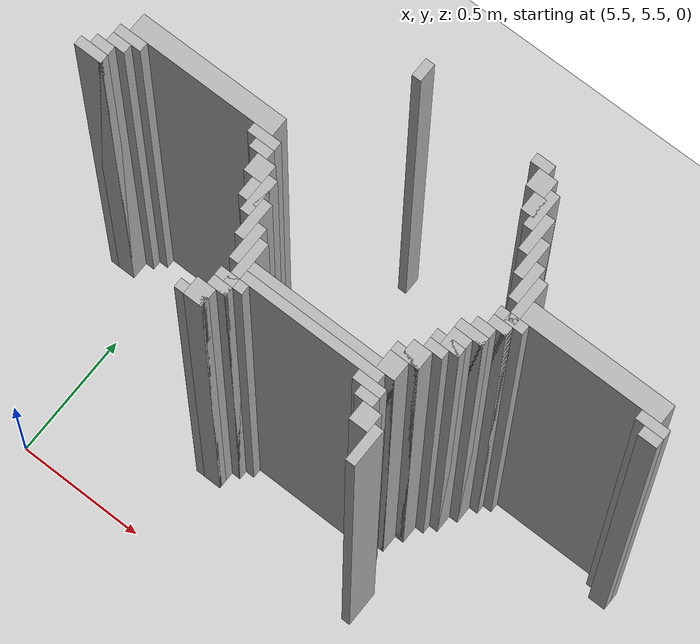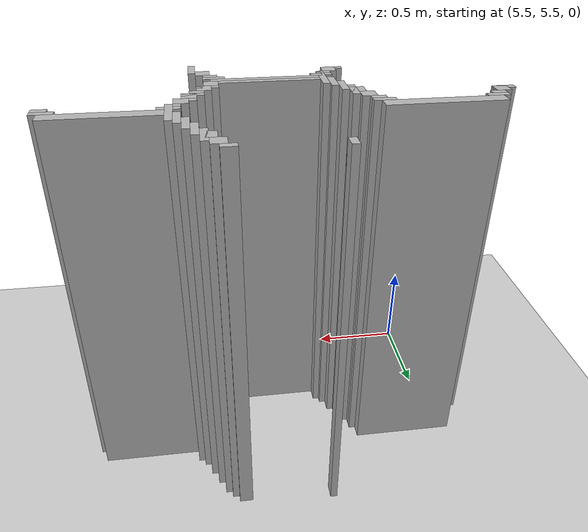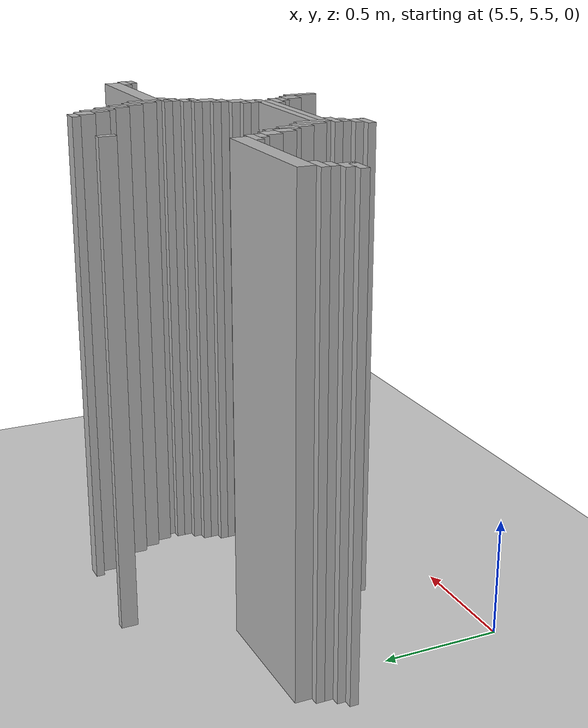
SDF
<sdf version="1.6">
 <world name="slam_world">
  <model name="ground_plane">
   <static>true</static>
   <link name="link">
    <collision name="collision">
     <geometry><plane><normal>0 0 1</normal><size>100 100</size></plane></geometry>
    </collision>
    <visual name="visual">
     <geometry><plane><normal>0 0 1</normal><size>100 100</size></plane></geometry>
     <material>
      <ambient>0.8 0.8 0.8 1</ambient>
      <diffuse>0.8 0.8 0.8 1</diffuse>
      <specular>0.8 0.8 0.8 1</specular>
     </material>
    </visual>
   </link>
  </model>
  <model name="wall_3537">
   <static>true</static>
   <pose>6.177494199535962 6.821345707656612 1.0 0 0 0</pose>
   <link name="link">
    <collision name="collision">
     <geometry><box><size>0.03480278422273782 0.06960556844547564 2.0</size></box></geometry>
    </collision>
    <visual name="visual">
     <geometry><box><size>0.03480278422273782 0.06960556844547564 2.0</size></box></geometry>
     <material><ambient>0.5 0.5 0.5 1</ambient><diffuse>0.7 0.7 0.7 1</diffuse></material>
    </visual>
   </link>
  </model>
  <model name="wall_3550">
   <static>true</static>
   <pose>6.647331786542924 6.803944315545244 1.0 0 0 0</pose>
   <link name="link">
    <collision name="collision">
     <geometry><box><size>0.06960556844547564 0.03480278422273782 2.0</size></box></geometry>
    </collision>
    <visual name="visual">
     <geometry><box><size>0.06960556844547564 0.03480278422273782 2.0</size></box></geometry>
     <material><ambient>0.5 0.5 0.5 1</ambient><diffuse>0.7 0.7 0.7 1</diffuse></material>
    </visual>
   </link>
  </model>
  <model name="wall_3558">
   <static>true</static>
   <pose>6.682134570765661 6.751740139211137 1.0 0 0 0</pose>
   <link name="link">
    <collision name="collision">
     <geometry><box><size>0.06960556844547564 0.06960556844547564 2.0</size></box></geometry>
    </collision>
    <visual name="visual">
     <geometry><box><size>0.06960556844547564 0.06960556844547564 2.0</size></box></geometry>
     <material><ambient>0.5 0.5 0.5 1</ambient><diffuse>0.7 0.7 0.7 1</diffuse></material>
    </visual>
   </link>
  </model>
  <model name="wall_3571">
   <static>true</static>
   <pose>6.734338747099768 6.682134570765661 1.0 0 0 0</pose>
   <link name="link">
    <collision name="collision">
     <geometry><box><size>0.03480278422273782 0.13921113689095127 2.0</size></box></geometry>
    </collision>
    <visual name="visual">
     <geometry><box><size>0.03480278422273782 0.13921113689095127 2.0</size></box></geometry>
     <material><ambient>0.5 0.5 0.5 1</ambient><diffuse>0.7 0.7 0.7 1</diffuse></material>
    </visual>
   </link>
  </model>
  <model name="wall_3584">
   <static>true</static>
   <pose>6.716937354988398 6.682134570765661 1.0 0 0 0</pose>
   <link name="link">
    <collision name="collision">
     <geometry><box><size>0.06960556844547564 0.06960556844547564 2.0</size></box></geometry>
    </collision>
    <visual name="visual">
     <geometry><box><size>0.06960556844547564 0.06960556844547564 2.0</size></box></geometry>
     <material><ambient>0.5 0.5 0.5 1</ambient><diffuse>0.7 0.7 0.7 1</diffuse></material>
    </visual>
   </link>
  </model>
  <model name="wall_3597">
   <static>true</static>
   <pose>6.769141531322505 6.612529002320185 1.0 0 0 0</pose>
   <link name="link">
    <collision name="collision">
     <geometry><box><size>0.03480278422273782 0.13921113689095127 2.0</size></box></geometry>
    </collision>
    <visual name="visual">
     <geometry><box><size>0.03480278422273782 0.13921113689095127 2.0</size></box></geometry>
     <material><ambient>0.5 0.5 0.5 1</ambient><diffuse>0.7 0.7 0.7 1</diffuse></material>
    </visual>
   </link>
  </model>
  <model name="wall_3617">
   <static>true</static>
   <pose>6.803944315545244 6.5429234338747095 1.0 0 0 0</pose>
   <link name="link">
    <collision name="collision">
     <geometry><box><size>0.03480278422273782 0.13921113689095127 2.0</size></box></geometry>
    </collision>
    <visual name="visual">
     <geometry><box><size>0.03480278422273782 0.13921113689095127 2.0</size></box></geometry>
     <material><ambient>0.5 0.5 0.5 1</ambient><diffuse>0.7 0.7 0.7 1</diffuse></material>
    </visual>
   </link>
  </model>
  <model name="wall_3630">
   <static>true</static>
   <pose>6.838747099767981 6.473317865429234 1.0 0 0 0</pose>
   <link name="link">
    <collision name="collision">
     <geometry><box><size>0.03480278422273782 0.13921113689095127 2.0</size></box></geometry>
    </collision>
    <visual name="visual">
     <geometry><box><size>0.03480278422273782 0.13921113689095127 2.0</size></box></geometry>
     <material><ambient>0.5 0.5 0.5 1</ambient><diffuse>0.7 0.7 0.7 1</diffuse></material>
    </visual>
   </link>
  </model>
  <model name="wall_3643">
   <static>true</static>
   <pose>6.8735498839907185 6.403712296983758 1.0 0 0 0</pose>
   <link name="link">
    <collision name="collision">
     <geometry><box><size>0.03480278422273782 0.2088167053364269 2.0</size></box></geometry>
    </collision>
    <visual name="visual">
     <geometry><box><size>0.03480278422273782 0.2088167053364269 2.0</size></box></geometry>
     <material><ambient>0.5 0.5 0.5 1</ambient><diffuse>0.7 0.7 0.7 1</diffuse></material>
    </visual>
   </link>
  </model>
  <model name="wall_3664">
   <static>true</static>
   <pose>5.672853828306264 6.403712296983758 1.0 0 0 0</pose>
   <link name="link">
    <collision name="collision">
     <geometry><box><size>0.5568445475638051 0.06960556844547564 2.0</size></box></geometry>
    </collision>
    <visual name="visual">
     <geometry><box><size>0.5568445475638051 0.06960556844547564 2.0</size></box></geometry>
     <material><ambient>0.5 0.5 0.5 1</ambient><diffuse>0.7 0.7 0.7 1</diffuse></material>
    </visual>
   </link>
  </model>
  <model name="wall_3665">
   <static>true</static>
   <pose>7.151972157772621 6.403712296983758 1.0 0 0 0</pose>
   <link name="link">
    <collision name="collision">
     <geometry><box><size>0.5220417633410672 0.06960556844547564 2.0</size></box></geometry>
    </collision>
    <visual name="visual">
     <geometry><box><size>0.5220417633410672 0.06960556844547564 2.0</size></box></geometry>
     <material><ambient>0.5 0.5 0.5 1</ambient><diffuse>0.7 0.7 0.7 1</diffuse></material>
    </visual>
   </link>
  </model>
  <model name="wall_3682">
   <static>true</static>
   <pose>5.41183294663573 6.351508120649652 1.0 0 0 0</pose>
   <link name="link">
    <collision name="collision">
     <geometry><box><size>0.10440835266821345 0.03480278422273782 2.0</size></box></geometry>
    </collision>
    <visual name="visual">
     <geometry><box><size>0.10440835266821345 0.03480278422273782 2.0</size></box></geometry>
     <material><ambient>0.5 0.5 0.5 1</ambient><diffuse>0.7 0.7 0.7 1</diffuse></material>
    </visual>
   </link>
  </model>
  <model name="wall_3683">
   <static>true</static>
   <pose>5.933874709976798 6.351508120649652 1.0 0 0 0</pose>
   <link name="link">
    <collision name="collision">
     <geometry><box><size>0.10440835266821345 0.03480278422273782 2.0</size></box></geometry>
    </collision>
    <visual name="visual">
     <geometry><box><size>0.10440835266821345 0.03480278422273782 2.0</size></box></geometry>
     <material><ambient>0.5 0.5 0.5 1</ambient><diffuse>0.7 0.7 0.7 1</diffuse></material>
    </visual>
   </link>
  </model>
  <model name="wall_3684">
   <static>true</static>
   <pose>6.8735498839907185 6.351508120649652 1.0 0 0 0</pose>
   <link name="link">
    <collision name="collision">
     <geometry><box><size>0.10440835266821345 0.03480278422273782 2.0</size></box></geometry>
    </collision>
    <visual name="visual">
     <geometry><box><size>0.10440835266821345 0.03480278422273782 2.0</size></box></geometry>
     <material><ambient>0.5 0.5 0.5 1</ambient><diffuse>0.7 0.7 0.7 1</diffuse></material>
    </visual>
   </link>
  </model>
  <model name="wall_3685">
   <static>true</static>
   <pose>7.395591647331786 6.351508120649652 1.0 0 0 0</pose>
   <link name="link">
    <collision name="collision">
     <geometry><box><size>0.10440835266821345 0.03480278422273782 2.0</size></box></geometry>
    </collision>
    <visual name="visual">
     <geometry><box><size>0.10440835266821345 0.03480278422273782 2.0</size></box></geometry>
     <material><ambient>0.5 0.5 0.5 1</ambient><diffuse>0.7 0.7 0.7 1</diffuse></material>
    </visual>
   </link>
  </model>
  <model name="wall_3692">
   <static>true</static>
   <pose>5.3944315545243615 6.316705336426914 1.0 0 0 0</pose>
   <link name="link">
    <collision name="collision">
     <geometry><box><size>0.06960556844547564 0.03480278422273782 2.0</size></box></geometry>
    </collision>
    <visual name="visual">
     <geometry><box><size>0.06960556844547564 0.03480278422273782 2.0</size></box></geometry>
     <material><ambient>0.5 0.5 0.5 1</ambient><diffuse>0.7 0.7 0.7 1</diffuse></material>
    </visual>
   </link>
  </model>
  <model name="wall_3693">
   <static>true</static>
   <pose>5.951276102088166 6.316705336426914 1.0 0 0 0</pose>
   <link name="link">
    <collision name="collision">
     <geometry><box><size>0.06960556844547564 0.03480278422273782 2.0</size></box></geometry>
    </collision>
    <visual name="visual">
     <geometry><box><size>0.06960556844547564 0.03480278422273782 2.0</size></box></geometry>
     <material><ambient>0.5 0.5 0.5 1</ambient><diffuse>0.7 0.7 0.7 1</diffuse></material>
    </visual>
   </link>
  </model>
  <model name="wall_3694">
   <static>true</static>
   <pose>6.85614849187935 6.316705336426914 1.0 0 0 0</pose>
   <link name="link">
    <collision name="collision">
     <geometry><box><size>0.06960556844547564 0.03480278422273782 2.0</size></box></geometry>
    </collision>
    <visual name="visual">
     <geometry><box><size>0.06960556844547564 0.03480278422273782 2.0</size></box></geometry>
     <material><ambient>0.5 0.5 0.5 1</ambient><diffuse>0.7 0.7 0.7 1</diffuse></material>
    </visual>
   </link>
  </model>
  <model name="wall_3695">
   <static>true</static>
   <pose>7.412993039443156 6.316705336426914 1.0 0 0 0</pose>
   <link name="link">
    <collision name="collision">
     <geometry><box><size>0.06960556844547564 0.03480278422273782 2.0</size></box></geometry>
    </collision>
    <visual name="visual">
     <geometry><box><size>0.06960556844547564 0.03480278422273782 2.0</size></box></geometry>
     <material><ambient>0.5 0.5 0.5 1</ambient><diffuse>0.7 0.7 0.7 1</diffuse></material>
    </visual>
   </link>
  </model>
  <model name="wall_3705">
   <static>true</static>
   <pose>5.359628770301624 6.2645011600928076 1.0 0 0 0</pose>
   <link name="link">
    <collision name="collision">
     <geometry><box><size>0.06960556844547564 0.06960556844547564 2.0</size></box></geometry>
    </collision>
    <visual name="visual">
     <geometry><box><size>0.06960556844547564 0.06960556844547564 2.0</size></box></geometry>
     <material><ambient>0.5 0.5 0.5 1</ambient><diffuse>0.7 0.7 0.7 1</diffuse></material>
    </visual>
   </link>
  </model>
  <model name="wall_3706">
   <static>true</static>
   <pose>5.986078886310905 6.2645011600928076 1.0 0 0 0</pose>
   <link name="link">
    <collision name="collision">
     <geometry><box><size>0.06960556844547564 0.06960556844547564 2.0</size></box></geometry>
    </collision>
    <visual name="visual">
     <geometry><box><size>0.06960556844547564 0.06960556844547564 2.0</size></box></geometry>
     <material><ambient>0.5 0.5 0.5 1</ambient><diffuse>0.7 0.7 0.7 1</diffuse></material>
    </visual>
   </link>
  </model>
  <model name="wall_3707">
   <static>true</static>
   <pose>6.821345707656612 6.2645011600928076 1.0 0 0 0</pose>
   <link name="link">
    <collision name="collision">
     <geometry><box><size>0.06960556844547564 0.06960556844547564 2.0</size></box></geometry>
    </collision>
    <visual name="visual">
     <geometry><box><size>0.06960556844547564 0.06960556844547564 2.0</size></box></geometry>
     <material><ambient>0.5 0.5 0.5 1</ambient><diffuse>0.7 0.7 0.7 1</diffuse></material>
    </visual>
   </link>
  </model>
  <model name="wall_3718">
   <static>true</static>
   <pose>5.342227378190255 6.247099767981438 1.0 0 0 0</pose>
   <link name="link">
    <collision name="collision">
     <geometry><box><size>0.10440835266821345 0.03480278422273782 2.0</size></box></geometry>
    </collision>
    <visual name="visual">
     <geometry><box><size>0.10440835266821345 0.03480278422273782 2.0</size></box></geometry>
     <material><ambient>0.5 0.5 0.5 1</ambient><diffuse>0.7 0.7 0.7 1</diffuse></material>
    </visual>
   </link>
  </model>
  <model name="wall_3719">
   <static>true</static>
   <pose>6.038283062645012 6.194895591647332 1.0 0 0 0</pose>
   <link name="link">
    <collision name="collision">
     <geometry><box><size>0.03480278422273782 0.13921113689095127 2.0</size></box></geometry>
    </collision>
    <visual name="visual">
     <geometry><box><size>0.03480278422273782 0.13921113689095127 2.0</size></box></geometry>
     <material><ambient>0.5 0.5 0.5 1</ambient><diffuse>0.7 0.7 0.7 1</diffuse></material>
    </visual>
   </link>
  </model>
  <model name="wall_3720">
   <static>true</static>
   <pose>6.803944315545244 6.247099767981438 1.0 0 0 0</pose>
   <link name="link">
    <collision name="collision">
     <geometry><box><size>0.10440835266821345 0.03480278422273782 2.0</size></box></geometry>
    </collision>
    <visual name="visual">
     <geometry><box><size>0.10440835266821345 0.03480278422273782 2.0</size></box></geometry>
     <material><ambient>0.5 0.5 0.5 1</ambient><diffuse>0.7 0.7 0.7 1</diffuse></material>
    </visual>
   </link>
  </model>
  <model name="wall_3732">
   <static>true</static>
   <pose>6.020881670533642 6.194895591647332 1.0 0 0 0</pose>
   <link name="link">
    <collision name="collision">
     <geometry><box><size>0.06960556844547564 0.06960556844547564 2.0</size></box></geometry>
    </collision>
    <visual name="visual">
     <geometry><box><size>0.06960556844547564 0.06960556844547564 2.0</size></box></geometry>
     <material><ambient>0.5 0.5 0.5 1</ambient><diffuse>0.7 0.7 0.7 1</diffuse></material>
    </visual>
   </link>
  </model>
  <model name="wall_3733">
   <static>true</static>
   <pose>6.786542923433874 6.194895591647332 1.0 0 0 0</pose>
   <link name="link">
    <collision name="collision">
     <geometry><box><size>0.06960556844547564 0.06960556844547564 2.0</size></box></geometry>
    </collision>
    <visual name="visual">
     <geometry><box><size>0.06960556844547564 0.06960556844547564 2.0</size></box></geometry>
     <material><ambient>0.5 0.5 0.5 1</ambient><diffuse>0.7 0.7 0.7 1</diffuse></material>
    </visual>
   </link>
  </model>
  <model name="wall_3745">
   <static>true</static>
   <pose>6.073085846867749 6.125290023201856 1.0 0 0 0</pose>
   <link name="link">
    <collision name="collision">
     <geometry><box><size>0.03480278422273782 0.13921113689095127 2.0</size></box></geometry>
    </collision>
    <visual name="visual">
     <geometry><box><size>0.03480278422273782 0.13921113689095127 2.0</size></box></geometry>
     <material><ambient>0.5 0.5 0.5 1</ambient><diffuse>0.7 0.7 0.7 1</diffuse></material>
    </visual>
   </link>
  </model>
  <model name="wall_3746">
   <static>true</static>
   <pose>6.769141531322505 6.177494199535962 1.0 0 0 0</pose>
   <link name="link">
    <collision name="collision">
     <geometry><box><size>0.10440835266821345 0.03480278422273782 2.0</size></box></geometry>
    </collision>
    <visual name="visual">
     <geometry><box><size>0.10440835266821345 0.03480278422273782 2.0</size></box></geometry>
     <material><ambient>0.5 0.5 0.5 1</ambient><diffuse>0.7 0.7 0.7 1</diffuse></material>
    </visual>
   </link>
  </model>
  <model name="wall_3755">
   <static>true</static>
   <pose>6.751740139211137 6.142691415313225 1.0 0 0 0</pose>
   <link name="link">
    <collision name="collision">
     <geometry><box><size>0.06960556844547564 0.03480278422273782 2.0</size></box></geometry>
    </collision>
    <visual name="visual">
     <geometry><box><size>0.06960556844547564 0.03480278422273782 2.0</size></box></geometry>
     <material><ambient>0.5 0.5 0.5 1</ambient><diffuse>0.7 0.7 0.7 1</diffuse></material>
    </visual>
   </link>
  </model>
  <model name="wall_3762">
   <static>true</static>
   <pose>6.107888631090487 6.05568445475638 1.0 0 0 0</pose>
   <link name="link">
    <collision name="collision">
     <geometry><box><size>0.03480278422273782 0.13921113689095127 2.0</size></box></geometry>
    </collision>
    <visual name="visual">
     <geometry><box><size>0.03480278422273782 0.13921113689095127 2.0</size></box></geometry>
     <material><ambient>0.5 0.5 0.5 1</ambient><diffuse>0.7 0.7 0.7 1</diffuse></material>
    </visual>
   </link>
  </model>
  <model name="wall_3763">
   <static>true</static>
   <pose>6.716937354988398 6.090487238979118 1.0 0 0 0</pose>
   <link name="link">
    <collision name="collision">
     <geometry><box><size>0.06960556844547564 0.06960556844547564 2.0</size></box></geometry>
    </collision>
    <visual name="visual">
     <geometry><box><size>0.06960556844547564 0.06960556844547564 2.0</size></box></geometry>
     <material><ambient>0.5 0.5 0.5 1</ambient><diffuse>0.7 0.7 0.7 1</diffuse></material>
    </visual>
   </link>
  </model>
  <model name="wall_3775">
   <static>true</static>
   <pose>6.142691415313225 5.986078886310905 1.0 0 0 0</pose>
   <link name="link">
    <collision name="collision">
     <geometry><box><size>0.03480278422273782 0.2088167053364269 2.0</size></box></geometry>
    </collision>
    <visual name="visual">
     <geometry><box><size>0.03480278422273782 0.2088167053364269 2.0</size></box></geometry>
     <material><ambient>0.5 0.5 0.5 1</ambient><diffuse>0.7 0.7 0.7 1</diffuse></material>
    </visual>
   </link>
  </model>
  <model name="wall_3776">
   <static>true</static>
   <pose>6.69953596287703 6.073085846867749 1.0 0 0 0</pose>
   <link name="link">
    <collision name="collision">
     <geometry><box><size>0.10440835266821345 0.03480278422273782 2.0</size></box></geometry>
    </collision>
    <visual name="visual">
     <geometry><box><size>0.10440835266821345 0.03480278422273782 2.0</size></box></geometry>
     <material><ambient>0.5 0.5 0.5 1</ambient><diffuse>0.7 0.7 0.7 1</diffuse></material>
    </visual>
   </link>
  </model>
  <model name="wall_3785">
   <static>true</static>
   <pose>6.682134570765661 6.020881670533642 1.0 0 0 0</pose>
   <link name="link">
    <collision name="collision">
     <geometry><box><size>0.06960556844547564 0.06960556844547564 2.0</size></box></geometry>
    </collision>
    <visual name="visual">
     <geometry><box><size>0.06960556844547564 0.06960556844547564 2.0</size></box></geometry>
     <material><ambient>0.5 0.5 0.5 1</ambient><diffuse>0.7 0.7 0.7 1</diffuse></material>
    </visual>
   </link>
  </model>
  <model name="wall_3792">
   <static>true</static>
   <pose>6.438515081206496 6.003480278422273 1.0 0 0 0</pose>
   <link name="link">
    <collision name="collision">
     <geometry><box><size>0.5568445475638051 0.03480278422273782 2.0</size></box></geometry>
    </collision>
    <visual name="visual">
     <geometry><box><size>0.5568445475638051 0.03480278422273782 2.0</size></box></geometry>
     <material><ambient>0.5 0.5 0.5 1</ambient><diffuse>0.7 0.7 0.7 1</diffuse></material>
    </visual>
   </link>
  </model>
  <model name="wall_3803">
   <static>true</static>
   <pose>6.421113689095128 5.968677494199536 1.0 0 0 0</pose>
   <link name="link">
    <collision name="collision">
     <geometry><box><size>0.5220417633410672 0.03480278422273782 2.0</size></box></geometry>
    </collision>
    <visual name="visual">
     <geometry><box><size>0.5220417633410672 0.03480278422273782 2.0</size></box></geometry>
     <material><ambient>0.5 0.5 0.5 1</ambient><diffuse>0.7 0.7 0.7 1</diffuse></material>
    </visual>
   </link>
  </model>
  <model name="wall_3815">
   <static>true</static>
   <pose>6.142691415313225 5.933874709976798 1.0 0 0 0</pose>
   <link name="link">
    <collision name="collision">
     <geometry><box><size>0.10440835266821345 0.03480278422273782 2.0</size></box></geometry>
    </collision>
    <visual name="visual">
     <geometry><box><size>0.10440835266821345 0.03480278422273782 2.0</size></box></geometry>
     <material><ambient>0.5 0.5 0.5 1</ambient><diffuse>0.7 0.7 0.7 1</diffuse></material>
    </visual>
   </link>
  </model>
  <model name="wall_3816">
   <static>true</static>
   <pose>6.664733178654292 5.933874709976798 1.0 0 0 0</pose>
   <link name="link">
    <collision name="collision">
     <geometry><box><size>0.10440835266821345 0.03480278422273782 2.0</size></box></geometry>
    </collision>
    <visual name="visual">
     <geometry><box><size>0.10440835266821345 0.03480278422273782 2.0</size></box></geometry>
     <material><ambient>0.5 0.5 0.5 1</ambient><diffuse>0.7 0.7 0.7 1</diffuse></material>
    </visual>
   </link>
  </model>
  <model name="wall_3829">
   <static>true</static>
   <pose>6.125290023201856 5.89907192575406 1.0 0 0 0</pose>
   <link name="link">
    <collision name="collision">
     <geometry><box><size>0.06960556844547564 0.03480278422273782 2.0</size></box></geometry>
    </collision>
    <visual name="visual">
     <geometry><box><size>0.06960556844547564 0.03480278422273782 2.0</size></box></geometry>
     <material><ambient>0.5 0.5 0.5 1</ambient><diffuse>0.7 0.7 0.7 1</diffuse></material>
    </visual>
   </link>
  </model>
  <model name="wall_3830">
   <static>true</static>
   <pose>6.682134570765661 5.89907192575406 1.0 0 0 0</pose>
   <link name="link">
    <collision name="collision">
     <geometry><box><size>0.06960556844547564 0.03480278422273782 2.0</size></box></geometry>
    </collision>
    <visual name="visual">
     <geometry><box><size>0.06960556844547564 0.03480278422273782 2.0</size></box></geometry>
     <material><ambient>0.5 0.5 0.5 1</ambient><diffuse>0.7 0.7 0.7 1</diffuse></material>
    </visual>
   </link>
  </model>
  <model name="wall_3844">
   <static>true</static>
   <pose>6.090487238979118 5.846867749419953 1.0 0 0 0</pose>
   <link name="link">
    <collision name="collision">
     <geometry><box><size>0.06960556844547564 0.06960556844547564 2.0</size></box></geometry>
    </collision>
    <visual name="visual">
     <geometry><box><size>0.06960556844547564 0.06960556844547564 2.0</size></box></geometry>
     <material><ambient>0.5 0.5 0.5 1</ambient><diffuse>0.7 0.7 0.7 1</diffuse></material>
    </visual>
   </link>
  </model>
  <model name="wall_3845">
   <static>true</static>
   <pose>6.716937354988398 5.846867749419953 1.0 0 0 0</pose>
   <link name="link">
    <collision name="collision">
     <geometry><box><size>0.06960556844547564 0.06960556844547564 2.0</size></box></geometry>
    </collision>
    <visual name="visual">
     <geometry><box><size>0.06960556844547564 0.06960556844547564 2.0</size></box></geometry>
     <material><ambient>0.5 0.5 0.5 1</ambient><diffuse>0.7 0.7 0.7 1</diffuse></material>
    </visual>
   </link>
  </model>
  <model name="wall_3860">
   <static>true</static>
   <pose>6.073085846867749 5.8294663573085845 1.0 0 0 0</pose>
   <link name="link">
    <collision name="collision">
     <geometry><box><size>0.10440835266821345 0.03480278422273782 2.0</size></box></geometry>
    </collision>
    <visual name="visual">
     <geometry><box><size>0.10440835266821345 0.03480278422273782 2.0</size></box></geometry>
     <material><ambient>0.5 0.5 0.5 1</ambient><diffuse>0.7 0.7 0.7 1</diffuse></material>
    </visual>
   </link>
  </model>
  <model name="wall_3861">
   <static>true</static>
   <pose>6.769141531322505 5.7772621809744775 1.0 0 0 0</pose>
   <link name="link">
    <collision name="collision">
     <geometry><box><size>0.03480278422273782 0.13921113689095127 2.0</size></box></geometry>
    </collision>
    <visual name="visual">
     <geometry><box><size>0.03480278422273782 0.13921113689095127 2.0</size></box></geometry>
     <material><ambient>0.5 0.5 0.5 1</ambient><diffuse>0.7 0.7 0.7 1</diffuse></material>
    </visual>
   </link>
  </model>
 </world>
</sdf>
